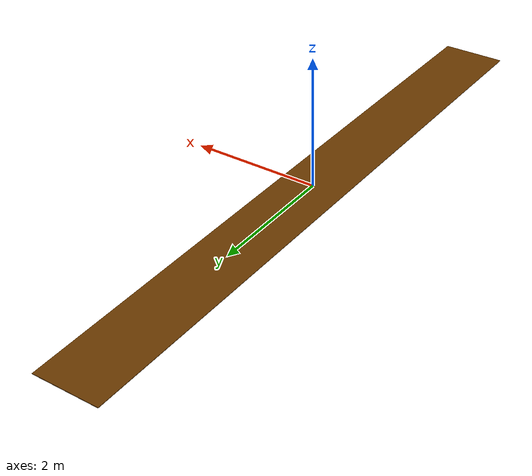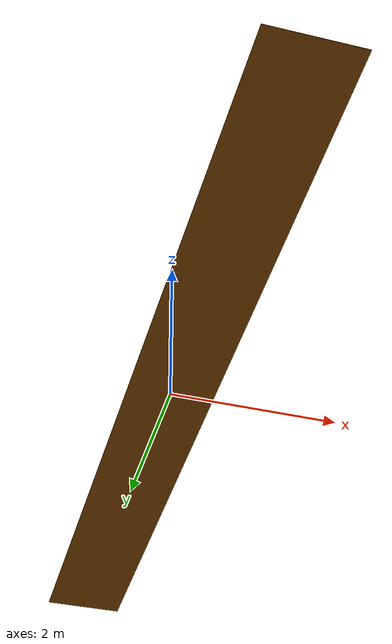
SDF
<?xml version='1.0'?>
<sdf version='1.8'>
  <model name="lift_drag_wing">
    <link name="base_link">
      <inertial>
        <inertia>
          <ixx>0.465</ixx>
          <ixy>0.0</ixy>
          <ixz>0.0</ixz>
          <iyy>0.006</iyy>
          <iyz>0.0</iyz>
          <izz>0.470</izz>
        </inertia>
        <mass>1.0</mass>
      </inertial>
      <collision name="collision">
        <geometry>
          <box>
            <size>1.0 10.0 0.01</size>
          </box>
        </geometry>
      </collision>
      <visual name="visual">
        <geometry>
          <box>
            <size>1.0 10.0 0.01</size>
          </box>
        </geometry>
        <material>
          <ambient>0.5 0.2 0.2 1.0</ambient>
          <diffuse>.421 0.225 0.0 1.0</diffuse>
        </material>
      </visual>
    </link>
  </model>
</sdf>
